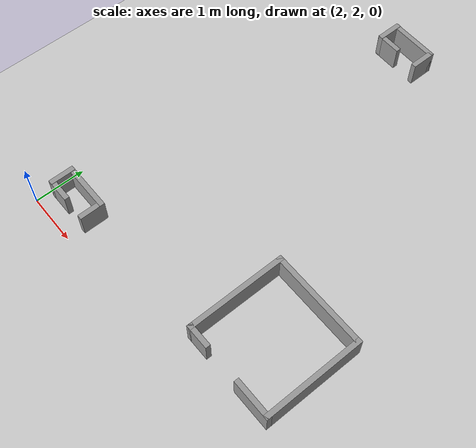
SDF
<sdf version="1.6">
 <world name="default">
  <model name="ground_plane">
   <static>1</static>
   <link name="link">
    <collision name="collision">
     <geometry><plane><normal>0 0 1</normal><size>20 20</size></plane></geometry>
     <surface>
      <contact><collide_bitmask>65535</collide_bitmask></contact>
      <friction><ode><mu>100</mu><mu2>50</mu2></ode></friction>
     </surface>
    </collision>
    <visual name="visual">
     <cast_shadows>0</cast_shadows>
     <geometry><plane><normal>0 0 1</normal><size>20 20</size></plane></geometry>
     <material>
      <script><uri>file://media/materials/scripts/gazebo.material</uri><name>Gazebo/Grey</name></script>
     </material>
    </visual>
   </link>
  </model>
  <model name="shape0">
   <pose>3.9 9.35 0 0 -0 0</pose>
   <link name="Wall_0">
    <pose>0 0.2 0 0 -0 0</pose>
    <inertial>
     <mass>1</mass>
     <inertia><ixx>1</ixx><ixy>0</ixy><ixz>0</ixz><iyy>1</iyy><iyz>0</iyz><izz>1</izz></inertia>
    </inertial>
    <visual name="Wall_0_Visual">
     <pose>0 0 0.25 0 -0 0</pose>
     <geometry><box><size>1 0.1 0.5</size></box></geometry>
     <material>
      <script><uri>file://media/materials/scripts/gazebo.material</uri><name>Gazebo/Grey</name></script>
      <ambient>1 1 1 1</ambient>
      <shader type="vertex"><normal_map>__default__</normal_map></shader>
      <diffuse>0.7 0.7 0.7 1</diffuse>
      <specular>0.01 0.01 0.01 1</specular>
      <emissive>0 0 0 1</emissive>
     </material>
     <meta><layer>0</layer></meta>
    </visual>
    <collision name="Wall_0_Collision">
     <pose>0 0 0.25 0 -0 0</pose>
     <geometry><box><size>1 0.1 0.5</size></box></geometry>
     <surface>
      <friction>
       <ode><mu>1</mu><mu2>1</mu2><fdir1>0 0 0</fdir1><slip1>0</slip1><slip2>0</slip2></ode>
       <torsional>
        <coefficient>1</coefficient>
        <patch_radius>0</patch_radius>
        <surface_radius>0</surface_radius>
        <use_patch_radius>1</use_patch_radius>
        <ode><slip>0</slip></ode>
       </torsional>
      </friction>
      <bounce><restitution_coefficient>0</restitution_coefficient><threshold>1e+06</threshold></bounce>
      <contact>
       <collide_without_contact>0</collide_without_contact>
       <collide_without_contact_bitmask>1</collide_without_contact_bitmask>
       <collide_bitmask>1</collide_bitmask>
       <ode>
        <soft_cfm>0</soft_cfm>
        <soft_erp>0.2</soft_erp>
        <kp>1e+13</kp>
        <kd>1</kd>
        <max_vel>0.01</max_vel>
        <min_depth>0</min_depth>
       </ode>
       <bullet>
        <split_impulse>1</split_impulse>
        <split_impulse_penetration_threshold>-0.01</split_impulse_penetration_threshold>
        <soft_cfm>0</soft_cfm>
        <soft_erp>0.2</soft_erp>
        <kp>1e+13</kp>
        <kd>1</kd>
       </bullet>
      </contact>
     </surface>
    </collision>
   </link>
   <link name="Wall_2">
    <pose>-0.45 0 0.01 0 0 -1.5708</pose>
    <inertial>
     <mass>1</mass>
     <inertia><ixx>1</ixx><ixy>0</ixy><ixz>0</ixz><iyy>1</iyy><iyz>0</iyz><izz>1</izz></inertia>
    </inertial>
    <visual name="Wall_2_Visual">
     <pose>0 0 0.25 0 -0 0</pose>
     <geometry><box><size>0.5 0.1 0.5</size></box></geometry>
     <material>
      <script><uri>file://media/materials/scripts/gazebo.material</uri><name>Gazebo/Grey</name></script>
      <ambient>1 1 1 1</ambient>
      <shader type="vertex"><normal_map>__default__</normal_map></shader>
      <diffuse>0.7 0.7 0.7 1</diffuse>
      <specular>0.01 0.01 0.01 1</specular>
      <emissive>0 0 0 1</emissive>
     </material>
     <meta><layer>0</layer></meta>
    </visual>
    <collision name="Wall_2_Collision">
     <pose>0 0 0.25 0 -0 0</pose>
     <geometry><box><size>0.5 0.1 0.5</size></box></geometry>
     <surface>
      <friction>
       <ode><mu>1</mu><mu2>1</mu2><fdir1>0 0 0</fdir1><slip1>0</slip1><slip2>0</slip2></ode>
       <torsional>
        <coefficient>1</coefficient>
        <patch_radius>0</patch_radius>
        <surface_radius>0</surface_radius>
        <use_patch_radius>1</use_patch_radius>
        <ode><slip>0</slip></ode>
       </torsional>
      </friction>
      <bounce><restitution_coefficient>0</restitution_coefficient><threshold>1e+06</threshold></bounce>
      <contact>
       <collide_without_contact>0</collide_without_contact>
       <collide_without_contact_bitmask>1</collide_without_contact_bitmask>
       <collide_bitmask>1</collide_bitmask>
       <ode>
        <soft_cfm>0</soft_cfm>
        <soft_erp>0.2</soft_erp>
        <kp>1e+13</kp>
        <kd>1</kd>
        <max_vel>0.01</max_vel>
        <min_depth>0</min_depth>
       </ode>
       <bullet>
        <split_impulse>1</split_impulse>
        <split_impulse_penetration_threshold>-0.01</split_impulse_penetration_threshold>
        <soft_cfm>0</soft_cfm>
        <soft_erp>0.2</soft_erp>
        <kp>1e+13</kp>
        <kd>1</kd>
       </bullet>
      </contact>
     </surface>
    </collision>
   </link>
   <link name="Wall_4">
    <pose>0.45 0 0 0 0 -1.5708</pose>
    <inertial>
     <mass>1</mass>
     <inertia><ixx>1</ixx><ixy>0</ixy><ixz>0</ixz><iyy>1</iyy><iyz>0</iyz><izz>1</izz></inertia>
    </inertial>
    <visual name="Wall_4_Visual">
     <pose>0 0 0.25 0 -0 0</pose>
     <geometry><box><size>0.5 0.1 0.5</size></box></geometry>
     <material>
      <script><uri>file://media/materials/scripts/gazebo.material</uri><name>Gazebo/Grey</name></script>
      <ambient>1 1 1 1</ambient>
      <shader type="vertex"><normal_map>__default__</normal_map></shader>
      <diffuse>0.7 0.7 0.7 1</diffuse>
      <specular>0.01 0.01 0.01 1</specular>
      <emissive>0 0 0 1</emissive>
     </material>
     <meta><layer>0</layer></meta>
    </visual>
    <collision name="Wall_4_Collision">
     <pose>0 0 0.25 0 -0 0</pose>
     <geometry><box><size>0.5 0.1 0.5</size></box></geometry>
     <surface>
      <friction>
       <ode><mu>1</mu><mu2>1</mu2><fdir1>0 0 0</fdir1><slip1>0</slip1><slip2>0</slip2></ode>
       <torsional>
        <coefficient>1</coefficient>
        <patch_radius>0</patch_radius>
        <surface_radius>0</surface_radius>
        <use_patch_radius>1</use_patch_radius>
        <ode><slip>0</slip></ode>
       </torsional>
      </friction>
      <bounce><restitution_coefficient>0</restitution_coefficient><threshold>1e+06</threshold></bounce>
      <contact>
       <collide_without_contact>0</collide_without_contact>
       <collide_without_contact_bitmask>1</collide_without_contact_bitmask>
       <collide_bitmask>1</collide_bitmask>
       <ode>
        <soft_cfm>0</soft_cfm>
        <soft_erp>0.2</soft_erp>
        <kp>1e+13</kp>
        <kd>1</kd>
        <max_vel>0.01</max_vel>
        <min_depth>0</min_depth>
       </ode>
       <bullet>
        <split_impulse>1</split_impulse>
        <split_impulse_penetration_threshold>-0.01</split_impulse_penetration_threshold>
        <soft_cfm>0</soft_cfm>
        <soft_erp>0.2</soft_erp>
        <kp>1e+13</kp>
        <kd>1</kd>
       </bullet>
      </contact>
     </surface>
    </collision>
   </link>
   <link name="Wall_7">
    <pose>-0.25 -0.2 0 0 -0 0</pose>
    <inertial>
     <mass>1</mass>
     <inertia><ixx>1</ixx><ixy>0</ixy><ixz>0</ixz><iyy>1</iyy><iyz>0</iyz><izz>1</izz></inertia>
    </inertial>
    <visual name="Wall_7_Visual">
     <pose>0 0 0.25 0 -0 0</pose>
     <geometry><box><size>0.5 0.1 0.5</size></box></geometry>
     <material>
      <script><uri>file://media/materials/scripts/gazebo.material</uri><name>Gazebo/Grey</name></script>
      <ambient>1 1 1 1</ambient>
      <shader type="vertex"><normal_map>__default__</normal_map></shader>
      <diffuse>0.7 0.7 0.7 1</diffuse>
      <specular>0.01 0.01 0.01 1</specular>
      <emissive>0 0 0 1</emissive>
     </material>
     <meta><layer>0</layer></meta>
    </visual>
    <collision name="Wall_7_Collision">
     <pose>0 0 0.25 0 -0 0</pose>
     <geometry><box><size>0.5 0.1 0.5</size></box></geometry>
     <surface>
      <friction>
       <ode><mu>1</mu><mu2>1</mu2><fdir1>0 0 0</fdir1><slip1>0</slip1><slip2>0</slip2></ode>
       <torsional>
        <coefficient>1</coefficient>
        <patch_radius>0</patch_radius>
        <surface_radius>0</surface_radius>
        <use_patch_radius>1</use_patch_radius>
        <ode><slip>0</slip></ode>
       </torsional>
      </friction>
      <bounce><restitution_coefficient>0</restitution_coefficient><threshold>1e+06</threshold></bounce>
      <contact>
       <collide_without_contact>0</collide_without_contact>
       <collide_without_contact_bitmask>1</collide_without_contact_bitmask>
       <collide_bitmask>1</collide_bitmask>
       <ode>
        <soft_cfm>0</soft_cfm>
        <soft_erp>0.2</soft_erp>
        <kp>1e+13</kp>
        <kd>1</kd>
        <max_vel>0.01</max_vel>
        <min_depth>0</min_depth>
       </ode>
       <bullet>
        <split_impulse>1</split_impulse>
        <split_impulse_penetration_threshold>-0.01</split_impulse_penetration_threshold>
        <soft_cfm>0</soft_cfm>
        <soft_erp>0.2</soft_erp>
        <kp>1e+13</kp>
        <kd>1</kd>
       </bullet>
      </contact>
     </surface>
    </collision>
   </link>
   <static>1</static>
  </model>
  <model name="shape5">
   <pose>6.8 3.5 0 0 -0 0</pose>
   <link name="Wall_20">
    <collision name="Wall_20_Collision">
     <geometry><box><size>2 0.1 0.5</size></box></geometry>
     <pose>0 0 0.25 0 -0 0</pose>
    </collision>
    <visual name="Wall_20_Visual">
     <pose>0 0 0.25 0 -0 0</pose>
     <geometry><box><size>2 0.1 0.5</size></box></geometry>
     <material>
      <script><uri>file://media/materials/scripts/gazebo.material</uri><name>Gazebo/Grey</name></script>
      <ambient>1 1 1 1</ambient>
     </material>
     <meta><layer>0</layer></meta>
    </visual>
    <pose>-0 0.95 0 0 -0 0</pose>
   </link>
   <link name="Wall_21">
    <collision name="Wall_21_Collision">
     <geometry><box><size>2 0.1 0.5</size></box></geometry>
     <pose>0 0 0.25 0 -0 0</pose>
    </collision>
    <visual name="Wall_21_Visual">
     <pose>0 0 0.25 0 -0 0</pose>
     <geometry><box><size>2 0.1 0.5</size></box></geometry>
     <material>
      <script><uri>file://media/materials/scripts/gazebo.material</uri><name>Gazebo/Grey</name></script>
      <ambient>1 1 1 1</ambient>
     </material>
     <meta><layer>0</layer></meta>
    </visual>
    <pose>0.95 0 0 0 -0 -1.5708</pose>
   </link>
   <link name="Wall_22">
    <collision name="Wall_22_Collision">
     <geometry><box><size>0.8 0.1 0.5</size></box></geometry>
     <pose>0 0 0.25 0 -0 0</pose>
    </collision>
    <visual name="Wall_22_Visual">
     <pose>0 0 0.25 0 -0 0</pose>
     <geometry><box><size>0.8 0.1 0.5</size></box></geometry>
     <material>
      <script><uri>file://media/materials/scripts/gazebo.material</uri><name>Gazebo/Grey</name></script>
      <ambient>1 1 1 1</ambient>
     </material>
     <meta><layer>0</layer></meta>
    </visual>
    <pose>0.6 -0.95 0 0 -0 3.14159</pose>
   </link>
   <link name="Wall_24">
    <collision name="Wall_24_Collision">
     <geometry><box><size>2 0.1 0.5</size></box></geometry>
     <pose>0 0 0.25 0 -0 0</pose>
    </collision>
    <visual name="Wall_24_Visual">
     <pose>0 0 0.25 0 -0 0</pose>
     <geometry><box><size>2 0.1 0.5</size></box></geometry>
     <material>
      <script><uri>file://media/materials/scripts/gazebo.material</uri><name>Gazebo/Grey</name></script>
      <ambient>1 1 1 1</ambient>
     </material>
     <meta><layer>0</layer></meta>
    </visual>
    <pose>-0.95 0 0 0 -0 -1.5708</pose>
   </link>
   <link name="Wall_25">
    <collision name="Wall_25_Collision">
     <geometry><box><size>0.5 0.1 0.5</size></box></geometry>
     <pose>0 0 0.25 0 -0 0</pose>
    </collision>
    <visual name="Wall_25_Visual">
     <pose>0 0 0.25 0 -0 0</pose>
     <geometry><box><size>0.5 0.1 0.5</size></box></geometry>
     <material>
      <script><uri>file://media/materials/scripts/gazebo.material</uri><name>Gazebo/Grey</name></script>
      <ambient>1 1 1 1</ambient>
     </material>
     <meta><layer>0</layer></meta>
    </visual>
    <pose>-0.75 -0.95 0 0 -0 0</pose>
   </link>
   <static>1</static>
  </model>
  <model name="shape0">
   <pose>2.6 2.55 0 0 -0 0</pose>
   <link name="Wall_0">
    <pose>0 0.2 0 0 -0 0</pose>
    <inertial>
     <mass>1</mass>
     <inertia><ixx>1</ixx><ixy>0</ixy><ixz>0</ixz><iyy>1</iyy><iyz>0</iyz><izz>1</izz></inertia>
    </inertial>
    <visual name="Wall_0_Visual">
     <pose>0 0 0.25 0 -0 0</pose>
     <geometry><box><size>1 0.1 0.5</size></box></geometry>
     <material>
      <script><uri>file://media/materials/scripts/gazebo.material</uri><name>Gazebo/Grey</name></script>
      <ambient>1 1 1 1</ambient>
      <shader type="vertex"><normal_map>__default__</normal_map></shader>
      <diffuse>0.7 0.7 0.7 1</diffuse>
      <specular>0.01 0.01 0.01 1</specular>
      <emissive>0 0 0 1</emissive>
     </material>
     <meta><layer>0</layer></meta>
    </visual>
    <collision name="Wall_0_Collision">
     <pose>0 0 0.25 0 -0 0</pose>
     <geometry><box><size>1 0.1 0.5</size></box></geometry>
     <surface>
      <friction>
       <ode><mu>1</mu><mu2>1</mu2><fdir1>0 0 0</fdir1><slip1>0</slip1><slip2>0</slip2></ode>
       <torsional>
        <coefficient>1</coefficient>
        <patch_radius>0</patch_radius>
        <surface_radius>0</surface_radius>
        <use_patch_radius>1</use_patch_radius>
        <ode><slip>0</slip></ode>
       </torsional>
      </friction>
      <bounce><restitution_coefficient>0</restitution_coefficient><threshold>1e+06</threshold></bounce>
      <contact>
       <collide_without_contact>0</collide_without_contact>
       <collide_without_contact_bitmask>1</collide_without_contact_bitmask>
       <collide_bitmask>1</collide_bitmask>
       <ode>
        <soft_cfm>0</soft_cfm>
        <soft_erp>0.2</soft_erp>
        <kp>1e+13</kp>
        <kd>1</kd>
        <max_vel>0.01</max_vel>
        <min_depth>0</min_depth>
       </ode>
       <bullet>
        <split_impulse>1</split_impulse>
        <split_impulse_penetration_threshold>-0.01</split_impulse_penetration_threshold>
        <soft_cfm>0</soft_cfm>
        <soft_erp>0.2</soft_erp>
        <kp>1e+13</kp>
        <kd>1</kd>
       </bullet>
      </contact>
     </surface>
    </collision>
   </link>
   <link name="Wall_2">
    <pose>-0.45 0 0.01 0 0 -1.5708</pose>
    <inertial>
     <mass>1</mass>
     <inertia><ixx>1</ixx><ixy>0</ixy><ixz>0</ixz><iyy>1</iyy><iyz>0</iyz><izz>1</izz></inertia>
    </inertial>
    <visual name="Wall_2_Visual">
     <pose>0 0 0.25 0 -0 0</pose>
     <geometry><box><size>0.5 0.1 0.5</size></box></geometry>
     <material>
      <script><uri>file://media/materials/scripts/gazebo.material</uri><name>Gazebo/Grey</name></script>
      <ambient>1 1 1 1</ambient>
      <shader type="vertex"><normal_map>__default__</normal_map></shader>
      <diffuse>0.7 0.7 0.7 1</diffuse>
      <specular>0.01 0.01 0.01 1</specular>
      <emissive>0 0 0 1</emissive>
     </material>
     <meta><layer>0</layer></meta>
    </visual>
    <collision name="Wall_2_Collision">
     <pose>0 0 0.25 0 -0 0</pose>
     <geometry><box><size>0.5 0.1 0.5</size></box></geometry>
     <surface>
      <friction>
       <ode><mu>1</mu><mu2>1</mu2><fdir1>0 0 0</fdir1><slip1>0</slip1><slip2>0</slip2></ode>
       <torsional>
        <coefficient>1</coefficient>
        <patch_radius>0</patch_radius>
        <surface_radius>0</surface_radius>
        <use_patch_radius>1</use_patch_radius>
        <ode><slip>0</slip></ode>
       </torsional>
      </friction>
      <bounce><restitution_coefficient>0</restitution_coefficient><threshold>1e+06</threshold></bounce>
      <contact>
       <collide_without_contact>0</collide_without_contact>
       <collide_without_contact_bitmask>1</collide_without_contact_bitmask>
       <collide_bitmask>1</collide_bitmask>
       <ode>
        <soft_cfm>0</soft_cfm>
        <soft_erp>0.2</soft_erp>
        <kp>1e+13</kp>
        <kd>1</kd>
        <max_vel>0.01</max_vel>
        <min_depth>0</min_depth>
       </ode>
       <bullet>
        <split_impulse>1</split_impulse>
        <split_impulse_penetration_threshold>-0.01</split_impulse_penetration_threshold>
        <soft_cfm>0</soft_cfm>
        <soft_erp>0.2</soft_erp>
        <kp>1e+13</kp>
        <kd>1</kd>
       </bullet>
      </contact>
     </surface>
    </collision>
   </link>
   <link name="Wall_4">
    <pose>0.45 0 0 0 0 -1.5708</pose>
    <inertial>
     <mass>1</mass>
     <inertia><ixx>1</ixx><ixy>0</ixy><ixz>0</ixz><iyy>1</iyy><iyz>0</iyz><izz>1</izz></inertia>
    </inertial>
    <visual name="Wall_4_Visual">
     <pose>0 0 0.25 0 -0 0</pose>
     <geometry><box><size>0.5 0.1 0.5</size></box></geometry>
     <material>
      <script><uri>file://media/materials/scripts/gazebo.material</uri><name>Gazebo/Grey</name></script>
      <ambient>1 1 1 1</ambient>
      <shader type="vertex"><normal_map>__default__</normal_map></shader>
      <diffuse>0.7 0.7 0.7 1</diffuse>
      <specular>0.01 0.01 0.01 1</specular>
      <emissive>0 0 0 1</emissive>
     </material>
     <meta><layer>0</layer></meta>
    </visual>
    <collision name="Wall_4_Collision">
     <pose>0 0 0.25 0 -0 0</pose>
     <geometry><box><size>0.5 0.1 0.5</size></box></geometry>
     <surface>
      <friction>
       <ode><mu>1</mu><mu2>1</mu2><fdir1>0 0 0</fdir1><slip1>0</slip1><slip2>0</slip2></ode>
       <torsional>
        <coefficient>1</coefficient>
        <patch_radius>0</patch_radius>
        <surface_radius>0</surface_radius>
        <use_patch_radius>1</use_patch_radius>
        <ode><slip>0</slip></ode>
       </torsional>
      </friction>
      <bounce><restitution_coefficient>0</restitution_coefficient><threshold>1e+06</threshold></bounce>
      <contact>
       <collide_without_contact>0</collide_without_contact>
       <collide_without_contact_bitmask>1</collide_without_contact_bitmask>
       <collide_bitmask>1</collide_bitmask>
       <ode>
        <soft_cfm>0</soft_cfm>
        <soft_erp>0.2</soft_erp>
        <kp>1e+13</kp>
        <kd>1</kd>
        <max_vel>0.01</max_vel>
        <min_depth>0</min_depth>
       </ode>
       <bullet>
        <split_impulse>1</split_impulse>
        <split_impulse_penetration_threshold>-0.01</split_impulse_penetration_threshold>
        <soft_cfm>0</soft_cfm>
        <soft_erp>0.2</soft_erp>
        <kp>1e+13</kp>
        <kd>1</kd>
       </bullet>
      </contact>
     </surface>
    </collision>
   </link>
   <link name="Wall_7">
    <pose>-0.25 -0.2 0 0 -0 0</pose>
    <inertial>
     <mass>1</mass>
     <inertia><ixx>1</ixx><ixy>0</ixy><ixz>0</ixz><iyy>1</iyy><iyz>0</iyz><izz>1</izz></inertia>
    </inertial>
    <visual name="Wall_7_Visual">
     <pose>0 0 0.25 0 -0 0</pose>
     <geometry><box><size>0.5 0.1 0.5</size></box></geometry>
     <material>
      <script><uri>file://media/materials/scripts/gazebo.material</uri><name>Gazebo/Grey</name></script>
      <ambient>1 1 1 1</ambient>
      <shader type="vertex"><normal_map>__default__</normal_map></shader>
      <diffuse>0.7 0.7 0.7 1</diffuse>
      <specular>0.01 0.01 0.01 1</specular>
      <emissive>0 0 0 1</emissive>
     </material>
     <meta><layer>0</layer></meta>
    </visual>
    <collision name="Wall_7_Collision">
     <pose>0 0 0.25 0 -0 0</pose>
     <geometry><box><size>0.5 0.1 0.5</size></box></geometry>
     <surface>
      <friction>
       <ode><mu>1</mu><mu2>1</mu2><fdir1>0 0 0</fdir1><slip1>0</slip1><slip2>0</slip2></ode>
       <torsional>
        <coefficient>1</coefficient>
        <patch_radius>0</patch_radius>
        <surface_radius>0</surface_radius>
        <use_patch_radius>1</use_patch_radius>
        <ode><slip>0</slip></ode>
       </torsional>
      </friction>
      <bounce><restitution_coefficient>0</restitution_coefficient><threshold>1e+06</threshold></bounce>
      <contact>
       <collide_without_contact>0</collide_without_contact>
       <collide_without_contact_bitmask>1</collide_without_contact_bitmask>
       <collide_bitmask>1</collide_bitmask>
       <ode>
        <soft_cfm>0</soft_cfm>
        <soft_erp>0.2</soft_erp>
        <kp>1e+13</kp>
        <kd>1</kd>
        <max_vel>0.01</max_vel>
        <min_depth>0</min_depth>
       </ode>
       <bullet>
        <split_impulse>1</split_impulse>
        <split_impulse_penetration_threshold>-0.01</split_impulse_penetration_threshold>
        <soft_cfm>0</soft_cfm>
        <soft_erp>0.2</soft_erp>
        <kp>1e+13</kp>
        <kd>1</kd>
       </bullet>
      </contact>
     </surface>
    </collision>
   </link>
   <static>1</static>
  </model>
 </world>
</sdf>
